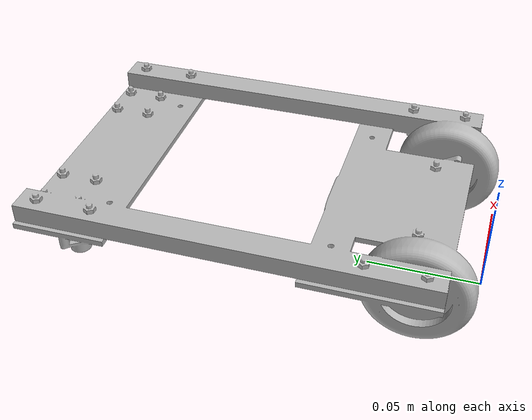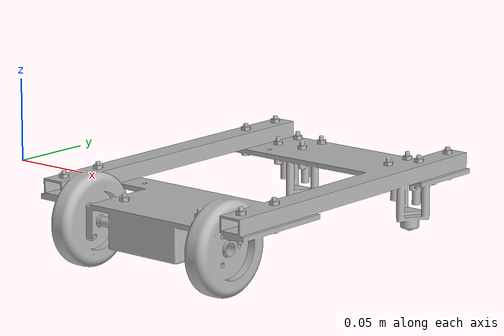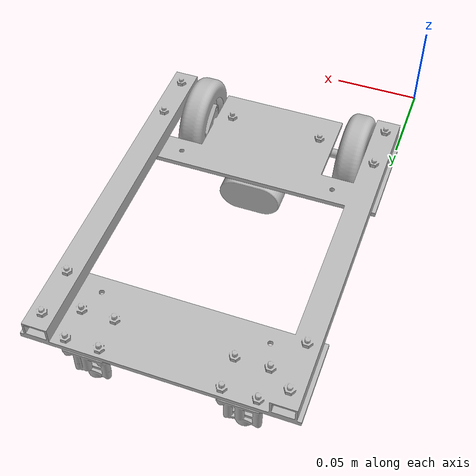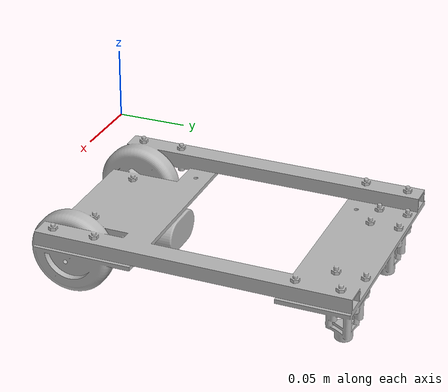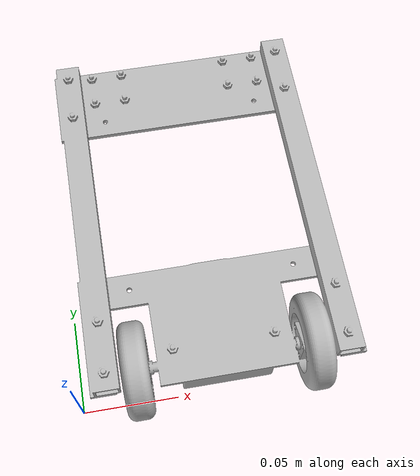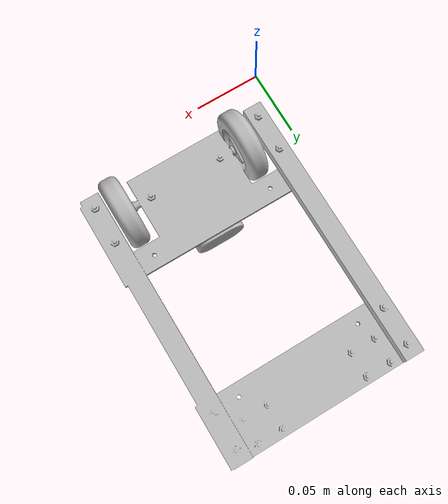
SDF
<?xml version="1.0" ?>
<sdf version="1.8"> <!--xmlとsdfのバージョン定義-->
    <world name="WorldDemo"> <!--ワールドの内容は全てこのタグの中に-->
        <physics name="1ms" type="ignored">
            <max_step_size>0.001</max_step_size> <!--最大何秒ごとにシミュレートするか（小さいほど正確なシミュレーションになる）-->
            <real_time_factor>1.0</real_time_factor> <!--現実時間との比率-->
        </physics>
        <plugin
            filename="libignition-gazebo-physics-system.so"
            name="ignition::gazebo::systems::Physics">
        </plugin> <!--動力学のシミュレーションに必要-->
        <plugin
            filename="libignition-gazebo-user-commands-system.so"
            name="ignition::gazebo::systems::UserCommands">
        </plugin> <!--ユーザーコマンドを利用可能に-->
        <plugin
            filename="libignition-gazebo-scene-broadcaster-system.so"
            name="ignition::gazebo::systems::SceneBroadcaster">
        </plugin> <!--ワールドシーンの描画-->

        <!--光に関する設定-->
        <light type="directional" name="sun"> <!--pointかdirectional、spot.-->
            <cast_shadows>true</cast_shadows> <!--trueなら影ができる-->
            <pose>0 0 10 0 0 0</pose> <!--位置 relative_to attributeを追加できる、しなければworldに関連付けられる-->
            <diffuse>0.8 0.8 0.8 1</diffuse>
            <specular>0.2 0.2 0.2 1</specular>
            <attenuation>
                <range>1000</range><!--光の範囲-->
                <constant>0.9</constant><!--減衰係数0-1、1は減衰しない-->
                <linear>0.01</linear><!--線形減衰係数0-1、1は距離について均等に減衰-->
                <quadratic>0.001</quadratic><!--光の方向性、pointには適用されない-->
            </attenuation>
            <direction>-0.5 0.1 -0.9</direction>
        </light>

        <model name="demoRobot">
            <pose>0 0 0 0 0 0</pose>
            <link name="link">
                <pose>0 0 0 0 0 0</pose>
                <inertial>
                    <inertia>
                      <ixx>4.2111447e-02</ixx>
                      <ixy>0</ixy>
                      <ixz>0</ixz>
                      <iyy>4.2111447e-02</iyy>
                      <iyz>0</iyz>
                      <izz>7.5254874e-02</izz>
                    </inertia>
                    <mass>1.3729096e+00</mass>
                  </inertial>
                <collision name="ollision">
                    <geometry>
                      <mesh>
                        <uri>model://my_robo/meshes/2DRoboPrac.stl</uri>
                      </mesh>
                    </geometry>
                  </collision>
                  <visual name="visual">
                    <geometry>
                      <mesh>
                        <uri>model://my_robo/meshes/2DRoboPrac.dae</uri>
                      </mesh>
                    </geometry>
                  </visual>
            </link>
        </model>
    </world>
</sdf>
